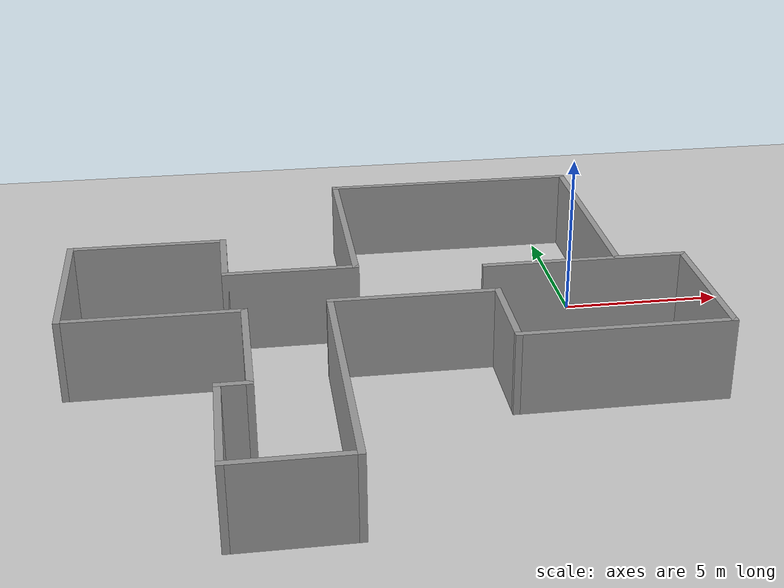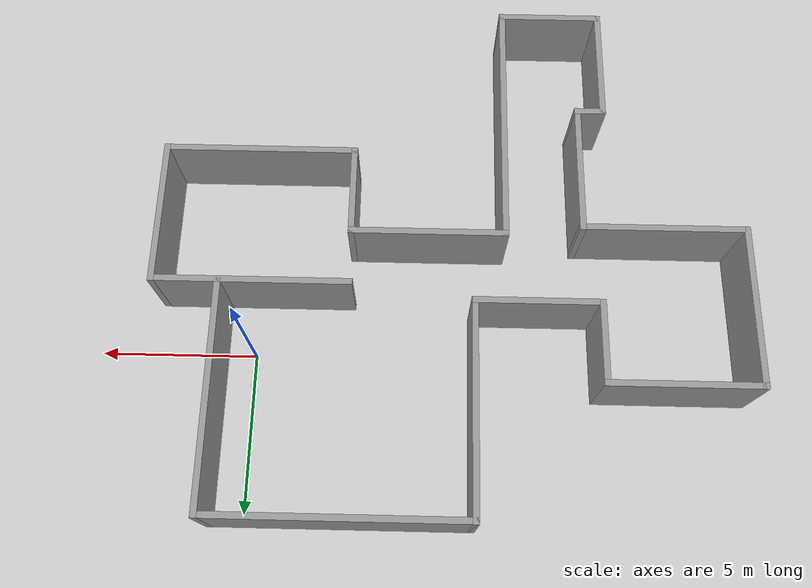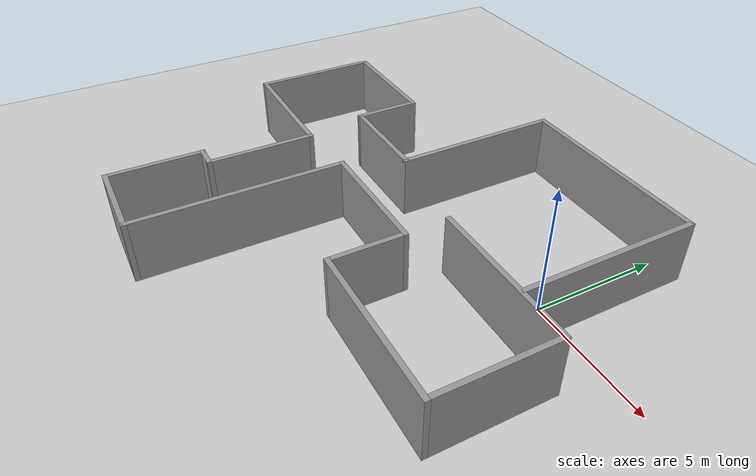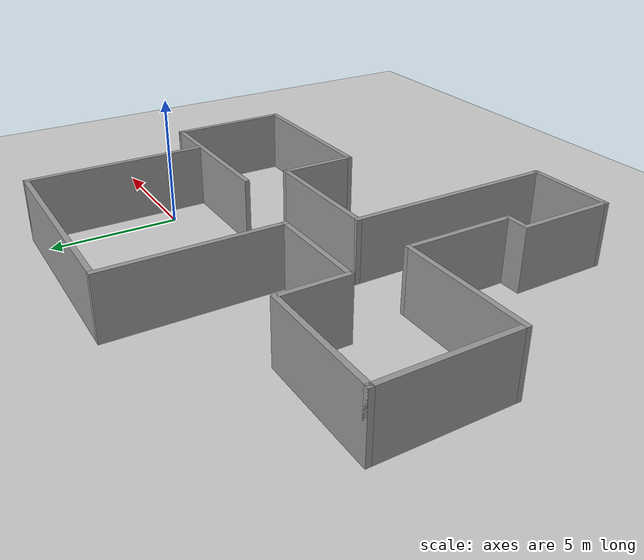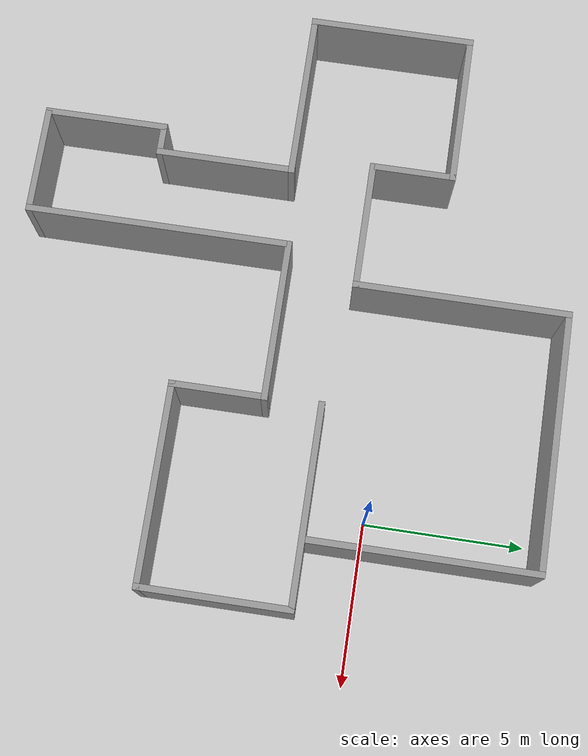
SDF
<?xml version="1.0" ?>
<sdf version="1.4">
  <world name="default">
    <include>
      <uri>model://ground_plane</uri>
    </include>
    <include>
      <uri>model://sun</uri>
    </include>
<model name='BuildingDefaultName'>
    <link name='Wall_0'>
      <collision name='Wall_0_Collision'>
        <geometry>
          <box>
            <size>6.35312 0.2 2.5</size>
          </box>
        </geometry>
        <pose>0 0 1.25 0 -0 0</pose>
      </collision>
      <visual name='Wall_0_Visual'>
        <pose>0 0 1.25 0 -0 0</pose>
        <geometry>
          <box>
            <size>6.35312 0.2 2.5</size>
          </box>
        </geometry>
        <material>
          <script>
            <uri>file://media/materials/scripts/gazebo.material</uri>
            <name>Gazebo/Grey</name>
          </script>
        </material>
      </visual>
      <velocity_decay>
        <linear>0</linear>
        <angular>0</angular>
      </velocity_decay>
      <pose>0.007901 -1.78522 0 0 -0 0</pose>
    </link>
    <link name='Wall_1'>
      <collision name='Wall_1_Collision'>
        <geometry>
          <box>
            <size>4.7696 0.2 2.5</size>
          </box>
        </geometry>
        <pose>0 0 1.25 0 -0 0</pose>
      </collision>
      <visual name='Wall_1_Visual'>
        <pose>0 0 1.25 0 -0 0</pose>
        <geometry>
          <box>
            <size>4.7696 0.2 2.5</size>
          </box>
        </geometry>
        <material>
          <script>
            <uri>file://media/materials/scripts/gazebo.material</uri>
            <name>Gazebo/Grey</name>
          </script>
        </material>
      </visual>
      <velocity_decay>
        <linear>0</linear>
        <angular>0</angular>
      </velocity_decay>
      <pose>3.08446 -4.07002 0 0 0 -1.5708</pose>
    </link>
    <link name='Wall_10'>
      <collision name='Wall_10_Collision'>
        <geometry>
          <box>
            <size>5.37706 0.2 2.5</size>
          </box>
        </geometry>
        <pose>0 0 1.25 0 -0 0</pose>
      </collision>
      <visual name='Wall_10_Visual'>
        <pose>0 0 1.25 0 -0 0</pose>
        <geometry>
          <box>
            <size>5.37706 0.2 2.5</size>
          </box>
        </geometry>
        <material>
          <script>
            <uri>file://media/materials/scripts/gazebo.material</uri>
            <name>Gazebo/Grey</name>
          </script>
        </material>
      </visual>
      <velocity_decay>
        <linear>0</linear>
        <angular>0</angular>
      </velocity_decay>
      <pose>-12.9849 -3.80344 0 0 -0 3.14159</pose>
    </link>
    <link name='Wall_11'>
      <collision name='Wall_11_Collision'>
        <geometry>
          <box>
            <size>5.23714 0.2 2.5</size>
          </box>
        </geometry>
        <pose>0 0 1.25 0 -0 0</pose>
      </collision>
      <visual name='Wall_11_Visual'>
        <pose>0 0 1.25 0 -0 0</pose>
        <geometry>
          <box>
            <size>5.23714 0.2 2.5</size>
          </box>
        </geometry>
        <material>
          <script>
            <uri>file://media/materials/scripts/gazebo.material</uri>
            <name>Gazebo/Grey</name>
          </script>
        </material>
      </visual>
      <velocity_decay>
        <linear>0</linear>
        <angular>0</angular>
      </velocity_decay>
      <pose>-15.5734 -1.28487 0 0 -0 1.5708</pose>
    </link>
    <link name='Wall_12'>
      <collision name='Wall_12_Collision'>
        <geometry>
          <box>
            <size>4.88734 0.2 2.5</size>
          </box>
        </geometry>
        <pose>0 0 1.25 0 -0 0</pose>
      </collision>
      <visual name='Wall_12_Visual'>
        <pose>0 0 1.25 0 -0 0</pose>
        <geometry>
          <box>
            <size>4.88734 0.2 2.5</size>
          </box>
        </geometry>
        <material>
          <script>
            <uri>file://media/materials/scripts/gazebo.material</uri>
            <name>Gazebo/Grey</name>
          </script>
        </material>
      </visual>
      <velocity_decay>
        <linear>0</linear>
        <angular>0</angular>
      </velocity_decay>
      <pose>-13.2298 1.2337 0 0 -0 0</pose>
    </link>
    <link name='Wall_13'>
      <collision name='Wall_13_Collision'>
        <geometry>
          <box>
            <size>2.71857 0.2 2.5</size>
          </box>
        </geometry>
        <pose>0 0 1.25 0 -0 0</pose>
      </collision>
      <visual name='Wall_13_Visual'>
        <pose>0 0 1.25 0 -0 0</pose>
        <geometry>
          <box>
            <size>2.71857 0.2 2.5</size>
          </box>
        </geometry>
        <material>
          <script>
            <uri>file://media/materials/scripts/gazebo.material</uri>
            <name>Gazebo/Grey</name>
          </script>
        </material>
      </visual>
      <velocity_decay>
        <linear>0</linear>
        <angular>0</angular>
      </velocity_decay>
      <pose>-10.8861 -0.025586 0 0 0 -1.5708</pose>
    </link>
    <link name='Wall_14'>
      <collision name='Wall_14_Collision'>
        <geometry>
          <box>
            <size>4.11777 0.2 2.5</size>
          </box>
        </geometry>
        <pose>0 0 1.25 0 -0 0</pose>
      </collision>
      <visual name='Wall_14_Visual'>
        <pose>0 0 1.25 0 -0 0</pose>
        <geometry>
          <box>
            <size>4.11777 0.2 2.5</size>
          </box>
        </geometry>
        <material>
          <script>
            <uri>file://media/materials/scripts/gazebo.material</uri>
            <name>Gazebo/Grey</name>
          </script>
        </material>
      </visual>
      <velocity_decay>
        <linear>0</linear>
        <angular>0</angular>
      </velocity_decay>
      <pose>-8.92721 -1.28487 0 0 -0 0</pose>
    </link>
    <link name='Wall_15'>
      <collision name='Wall_15_Collision'>
        <geometry>
          <box>
            <size>6.77626 0.2 2.5</size>
          </box>
        </geometry>
        <pose>0 0 1.25 0 -0 0</pose>
      </collision>
      <visual name='Wall_15_Visual'>
        <pose>0 0 1.25 0 -0 0</pose>
        <geometry>
          <box>
            <size>6.77626 0.2 2.5</size>
          </box>
        </geometry>
        <material>
          <script>
            <uri>file://media/materials/scripts/gazebo.material</uri>
            <name>Gazebo/Grey</name>
          </script>
        </material>
      </visual>
      <velocity_decay>
        <linear>0</linear>
        <angular>0</angular>
      </velocity_decay>
      <pose>-6.96832 2.00326 0 0 -0 1.5708</pose>
    </link>
    <link name='Wall_16'>
      <collision name='Wall_16_Collision'>
        <geometry>
          <box>
            <size>8.17547 0.2 2.5</size>
          </box>
        </geometry>
        <pose>0 0 1.25 0 -0 0</pose>
      </collision>
      <visual name='Wall_16_Visual'>
        <pose>0 0 1.25 0 -0 0</pose>
        <geometry>
          <box>
            <size>8.17547 0.2 2.5</size>
          </box>
        </geometry>
        <material>
          <script>
            <uri>file://media/materials/scripts/gazebo.material</uri>
            <name>Gazebo/Grey</name>
          </script>
        </material>
      </visual>
      <velocity_decay>
        <linear>0</linear>
        <angular>0</angular>
      </velocity_decay>
      <pose>-2.98059 5.29139 0 0 -0 0</pose>
    </link>
    <link name='Wall_17'>
      <collision name='Wall_17_Collision'>
        <geometry>
          <box>
            <size>7.19602 0.2 2.5</size>
          </box>
        </geometry>
        <pose>0 0 1.25 0 -0 0</pose>
      </collision>
      <visual name='Wall_17_Visual'>
        <pose>0 0 1.25 0 -0 0</pose>
        <geometry>
          <box>
            <size>7.19602 0.2 2.5</size>
          </box>
        </geometry>
        <material>
          <script>
            <uri>file://media/materials/scripts/gazebo.material</uri>
            <name>Gazebo/Grey</name>
          </script>
        </material>
      </visual>
      <velocity_decay>
        <linear>0</linear>
        <angular>0</angular>
      </velocity_decay>
      <pose>1.00715 1.79338 0 0 0 -1.5708</pose>
    </link>
    <link name='Wall_2'>
      <collision name='Wall_2_Collision'>
        <geometry>
          <box>
            <size>6.3364 0.2 2.5</size>
          </box>
        </geometry>
        <pose>0 0 1.25 0 -0 0</pose>
      </collision>
      <visual name='Wall_2_Visual'>
        <pose>0 0 1.25 0 -0 0</pose>
        <geometry>
          <box>
            <size>6.3364 0.2 2.5</size>
          </box>
        </geometry>
        <material>
          <script>
            <uri>file://media/materials/scripts/gazebo.material</uri>
            <name>Gazebo/Grey</name>
          </script>
        </material>
      </visual>
      <velocity_decay>
        <linear>0</linear>
        <angular>0</angular>
      </velocity_decay>
      <pose>0.016261 -6.35482 0 0 -0 3.14159</pose>
    </link>
    <link name='Wall_3'>
      <collision name='Wall_3_Collision'>
        <geometry>
          <box>
            <size>3.03122 0.2 2.5</size>
          </box>
        </geometry>
        <pose>0 0 1.25 0 -0 0</pose>
      </collision>
      <visual name='Wall_3_Visual'>
        <pose>0 0 1.25 0 -0 0</pose>
        <geometry>
          <box>
            <size>3.03122 0.2 2.5</size>
          </box>
        </geometry>
        <material>
          <script>
            <uri>file://media/materials/scripts/gazebo.material</uri>
            <name>Gazebo/Grey</name>
          </script>
        </material>
      </visual>
      <velocity_decay>
        <linear>0</linear>
        <angular>0</angular>
      </velocity_decay>
      <pose>-3.05194 -4.93921 0 0 -0 1.5708</pose>
    </link>
    <link name='Wall_4'>
      <collision name='Wall_4_Collision'>
        <geometry>
          <box>
            <size>5.09582 0.2 2.5</size>
          </box>
        </geometry>
        <pose>0 0 1.25 0 -0 0</pose>
      </collision>
      <visual name='Wall_4_Visual'>
        <pose>0 0 1.25 0 -0 0</pose>
        <geometry>
          <box>
            <size>5.09582 0.2 2.5</size>
          </box>
        </geometry>
        <material>
          <script>
            <uri>file://media/materials/scripts/gazebo.material</uri>
            <name>Gazebo/Grey</name>
          </script>
        </material>
      </visual>
      <velocity_decay>
        <linear>0</linear>
        <angular>0</angular>
      </velocity_decay>
      <pose>-5.49985 -3.5236 0 0 -0 3.14159</pose>
    </link>
    <link name='Wall_5'>
      <collision name='Wall_5_Collision'>
        <geometry>
          <box>
            <size>8.38535 0.2 2.5</size>
          </box>
        </geometry>
        <pose>0 0 1.25 0 -0 0</pose>
      </collision>
      <visual name='Wall_5_Visual'>
        <pose>0 0 1.25 0 -0 0</pose>
        <geometry>
          <box>
            <size>8.38535 0.2 2.5</size>
          </box>
        </geometry>
        <material>
          <script>
            <uri>file://media/materials/scripts/gazebo.material</uri>
            <name>Gazebo/Grey</name>
          </script>
        </material>
      </visual>
      <velocity_decay>
        <linear>0</linear>
        <angular>0</angular>
      </velocity_decay>
      <pose>-7.94776 -7.61627 0 0 0 -1.5708</pose>
    </link>
    <link name='Wall_6'>
      <collision name='Wall_6_Collision'>
        <geometry>
          <box>
            <size>3.48813 0.2 2.5</size>
          </box>
        </geometry>
        <pose>0 0 1.25 0 -0 0</pose>
      </collision>
      <visual name='Wall_6_Visual'>
        <pose>0 0 1.25 0 -0 0</pose>
        <geometry>
          <box>
            <size>3.48813 0.2 2.5</size>
          </box>
        </geometry>
        <material>
          <script>
            <uri>file://media/materials/scripts/gazebo.material</uri>
            <name>Gazebo/Grey</name>
          </script>
        </material>
      </visual>
      <velocity_decay>
        <linear>0</linear>
        <angular>0</angular>
      </velocity_decay>
      <pose>-9.59183 -11.7089 0 0 -0 3.14159</pose>
    </link>
    <link name='Wall_7'>
      <collision name='Wall_7_Collision'>
        <geometry>
          <box>
            <size>3.90789 0.2 2.5</size>
          </box>
        </geometry>
        <pose>0 0 1.25 0 -0 0</pose>
      </collision>
      <visual name='Wall_7_Visual'>
        <pose>0 0 1.25 0 -0 0</pose>
        <geometry>
          <box>
            <size>3.90789 0.2 2.5</size>
          </box>
        </geometry>
        <material>
          <script>
            <uri>file://media/materials/scripts/gazebo.material</uri>
            <name>Gazebo/Grey</name>
          </script>
        </material>
      </visual>
      <velocity_decay>
        <linear>0</linear>
        <angular>0</angular>
      </velocity_decay>
      <pose>-11.2359 -9.855 0 0 -0 1.5708</pose>
    </link>
    <link name='Wall_8'>
      <collision name='Wall_8_Collision'>
        <geometry>
          <box>
            <size>1.03952 0.2 2.5</size>
          </box>
        </geometry>
        <pose>0 0 1.25 0 -0 0</pose>
      </collision>
      <visual name='Wall_8_Visual'>
        <pose>0 0 1.25 0 -0 0</pose>
        <geometry>
          <box>
            <size>1.03952 0.2 2.5</size>
          </box>
        </geometry>
        <material>
          <script>
            <uri>file://media/materials/scripts/gazebo.material</uri>
            <name>Gazebo/Grey</name>
          </script>
        </material>
      </visual>
      <velocity_decay>
        <linear>0</linear>
        <angular>0</angular>
      </velocity_decay>
      <pose>-10.8161 -8.00105 0 0 -0 0</pose>
    </link>
    <link name='Wall_9'>
      <collision name='Wall_9_Collision'>
        <geometry>
          <box>
            <size>4.39762 0.2 2.5</size>
          </box>
        </geometry>
        <pose>0 0 1.25 0 -0 0</pose>
      </collision>
      <visual name='Wall_9_Visual'>
        <pose>0 0 1.25 0 -0 0</pose>
        <geometry>
          <box>
            <size>4.39762 0.2 2.5</size>
          </box>
        </geometry>
        <material>
          <script>
            <uri>file://media/materials/scripts/gazebo.material</uri>
            <name>Gazebo/Grey</name>
          </script>
        </material>
      </visual>
      <velocity_decay>
        <linear>0</linear>
        <angular>0</angular>
      </velocity_decay>
      <pose>-10.3964 -5.90225 0 0 -0 1.5708</pose>
    </link>
    <static>1</static>
  </model>
  </world>
</sdf>
